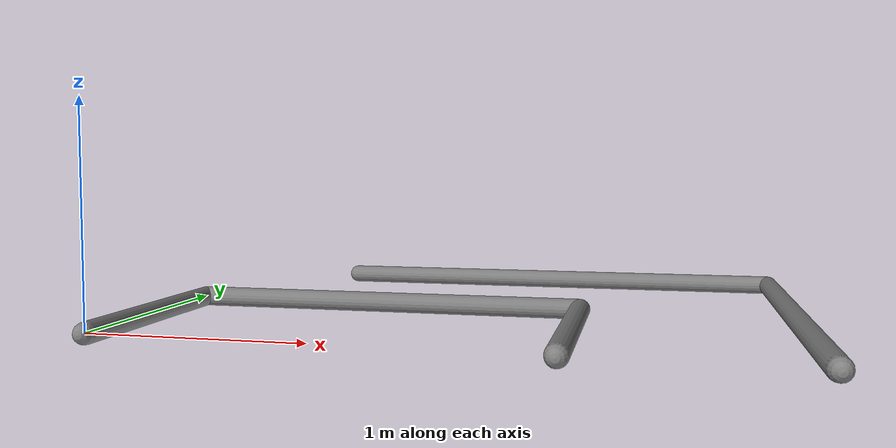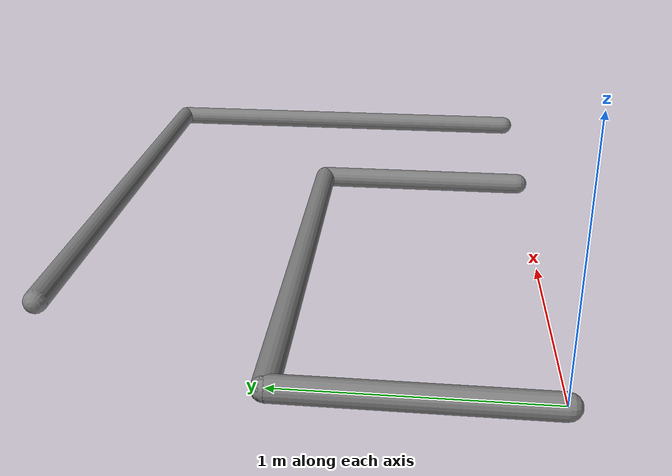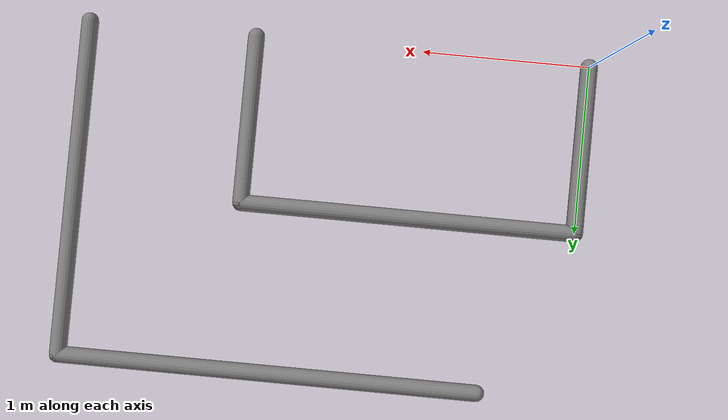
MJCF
<mujoco model="test">
  <option gravity="0 0 -9.81" timestep="0.002" solver="Newton" iterations="100"/>
  <worldbody>
    <body name="link1" pos="0 0 0 ">
      <joint type="hinge" axis="0 0 1" name="link1_joint"/>
      <geom type="capsule" fromto="0 0 0 0 1 0" size="0.05"/>
      <body name="link2" pos="0 1 0">
        <joint type="hinge" axis="0 0 1" name="link2_joint"/>
        <geom type="capsule" fromto="0 0 0 2 0 0" size="0.05"/>
        <site name="link2_end" pos="2 0 0" size="0.02"/>
        <site name="connet_link5" pos="1 0 0" size="0.02"/>
      </body>
    </body>
    <body name="link3" pos="2 0 0">
      <joint type="hinge" axis="0 0 1" name="link3_joint"/>
      <geom type="capsule" fromto="0 0 0 0 1 0" size="0.05"/>
      <site name="link3_end" pos="0 1 0" size="0.02"/>
    </body>
    <body name="link4" pos="3 0 0">
      <joint type="hinge" axis="0 0 1" name="link4_joint"/>
      <geom type="capsule" fromto="0 0 0 0 2 0" size="0.05"/>
      <body name="link5" pos="0 2 0">
        <joint type="hinge" axis="0 0 1" name="link5_joint"/>
        <geom type="capsule" fromto="0 0 0 -2.5 0 0" size="0.05"/>
        <site name="link5_end" pos="-2.5 0 0" size="0.02"/>
      </body>
    </body>
  </worldbody>
  <equality>
    <connect site1="link2_end" site2="link3_end"/>
    <connect site1="link5_end" site2="connet_link5"/>
  </equality>
</mujoco>
